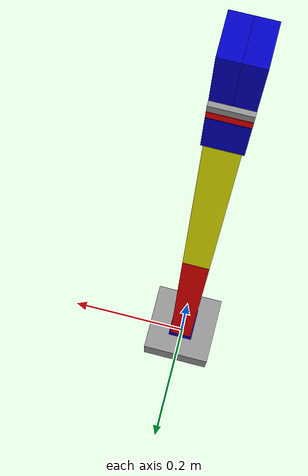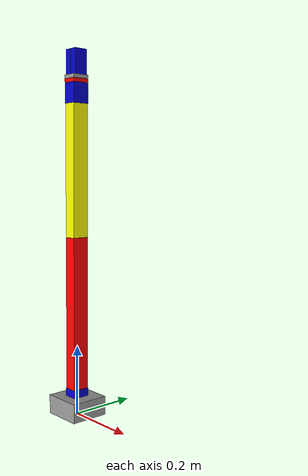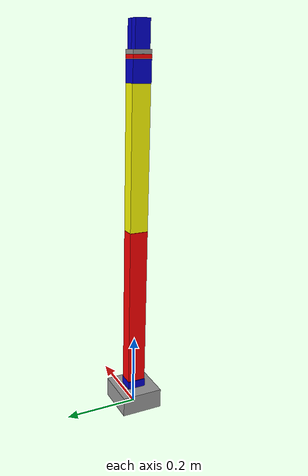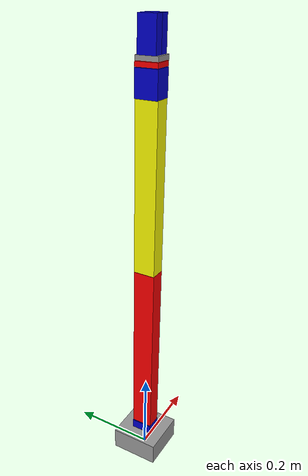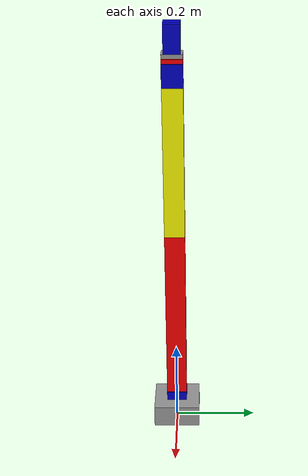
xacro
<?xml version="1.0" ?>
<robot name="robo_arm" xmlns:xacro="http://ros.org/wiki/xacro">

<gazebo reference="base_link">
  <material>Gazebo/Black</material>
</gazebo>

<gazebo reference="arm_link_0">
  <material>Gazebo/Orange</material>
</gazebo>

<gazebo reference="arm_link_1">
  <material>Gazebo/Blue</material>
</gazebo>

<gazebo reference="arm_link_2">
  <material>Gazebo/Orange</material>
</gazebo>

<gazebo reference="arm_link_3">
  <material>Gazebo/Blue</material>
</gazebo>

<gazebo reference="arm_link_4">
  <material>Gazebo/Orange</material>
</gazebo>

<gazebo reference="arm_link_5">
  <material>Gazebo/Blue</material>
</gazebo>

<gazebo reference="arm_link_6">
  <material>Gazebo/Orange</material>
</gazebo>

<gazebo reference="arm_link_7">
  <material>Gazebo/Blue</material>
</gazebo>

<gazebo reference="arm_link_8">
  <material>Gazebo/Orange</material>
</gazebo>

<!--Colors for the shapes-->
  <material name="omni/Blue">
    <color rgba="0 0 0.8 1"/>
  </material>
  <material name="omni/Red">
    <color rgba="1 0 0 1"/>
  </material>
  <material name="omni/Green">
    <color rgba="0 1 0 1"/>
  </material>
  <material name="omni/Yellow">
    <color rgba="1 1 0 1"/>
  </material>
  <material name="omni/LightGrey">
    <color rgba="0.6 0.6 0.6 1"/>
  </material>
  <material name="omni/DarkGrey">
    <color rgba="0.4 0.4 0.4 1"/>
  </material>
<!--Base link -->
  <link name="base_link">
    <inertial>
      <origin rpy="0 0 0" xyz="0 0 0"/>
      <mass value="10.0"/>
      <inertia ixx="0.1" ixy="0" ixz="0" iyy="0.1" iyz="0" izz="0.1"/>
    </inertial>
  </link>
  <!-- joint between base_link and arm_0_link -->
  <joint name="arm_joint_0" type="fixed">
    <origin rpy="0 0 0" xyz="0 0 0"/>
    <parent link="base_link"/>
    <child link="arm_link_0"/>
  </joint>
  <link name="arm_link_0">
    <visual>
      <origin rpy="0 0 0" xyz="0 0 0.02725"/>
      <geometry>
        <box size="0.1143 0.1143 0.0545"/>
      </geometry>
      <material name="omni/LightGrey"/>
    </visual>
    <collision>
      <origin rpy="0 0 0" xyz="0 0 0.02725"/>
      <geometry>
        <box size="0.1143 0.1143 0.0545"/>
      </geometry>
    </collision>
    <inertial>
      <!-- CENTER OF MASS -->
      <origin rpy="0 0 0" xyz="0 0 0.02725"/>
      <mass value="0.2"/>
      <!-- box inertia: 1/12*m(y^2+z^2), ... -->
      <inertia ixx="0.000267245666667" ixy="0" ixz="0" iyy="0.000267245666667" iyz="0" izz="0.000435483"/>
    </inertial>
  </link>
  <joint name="arm_joint_1" type="revolute">
    <parent link="arm_link_0"/>
    <child link="arm_link_1"/>
    <dynamics damping="3.0" friction="0.3"/>
    <limit effort="30.0" lower="-3.1415926535" upper="3.1415926535" velocity="5.0"/>
    <origin rpy="0 0 0" xyz="0 0 0.0545"/>
    <axis xyz="0 0 1"/>
  </joint>
  <link name="arm_link_1">
    <visual>
      <origin rpy="0 0 0" xyz="0 0 0.011"/>
      <geometry>
        <box size="0.0402 0.05 0.023"/>
      </geometry>
      <material name="omni/Blue"/>
    </visual>
    <collision>
      <origin rpy="0 0 0" xyz="0 0 0.011"/>
      <geometry>
        <box size="0.0402 0.05 0.023"/>
      </geometry>
    </collision>
    <inertial>
      <!-- CENTER OF MASS -->
      <origin rpy="0 0 0" xyz="0 0 0.0615"/>
      <mass value="0.190421352"/>
      <!-- box inertia: 1/12*m(y^2+z^2), ... -->
      <inertia ixx="0.000279744834534" ixy="0" ixz="0" iyy="0.000265717763008" iyz="0" izz="6.53151584738e-05"/>
    </inertial>
  </link>
  <joint name="arm_joint_2" type="revolute">
    <parent link="arm_link_1"/>
    <child link="arm_link_2"/>
    <dynamics damping="3.0" friction="0.3"/>
    <limit effort="30.0" lower="0" upper="1.57079632679" velocity="5.0"/>
    <origin rpy="0 0 0" xyz="0 0 0.02"/>
    <axis xyz="0 1 0"/>
  </joint>
  <link name="arm_link_2">
    <visual>
      <origin rpy="0 0 0" xyz="0 0 0.222"/>
      <geometry>
        <box size="0.0356 0.05 0.44"/>
      </geometry>
      <material name="omni/Red"/>
    </visual>
    <collision>
      <origin rpy="0 0 0" xyz="0 0 0.222"/>
      <geometry>
        <box size="0.0356 0.05 0.44"/>
      </geometry>
    </collision>
    <inertial>
      <!-- CENTER OF MASS -->
      <origin rpy="0 0 0" xyz="0 0 0.1585"/>
      <mass value="0.29302326"/>
      <!-- box inertia: 1/12*m(y^2+z^2), ... -->
      <inertia ixx="0.00251484771035" ixy="0" ixz="0" iyy="0.00248474836108" iyz="0" izz="9.19936757328e-05"/>
    </inertial>
  </link>
  <joint name="arm_joint_3" type="revolute">
    <parent link="arm_link_2"/>
    <child link="arm_link_3"/>
    <dynamics damping="3.0" friction="0.3"/>
    <limit effort="30.0" lower="0" upper="1.57079632679" velocity="5.0"/>
    <origin rpy="0 0 0" xyz="0 0 0.5"/>
    <axis xyz="0 1 0"/>
  </joint>
  <link name="arm_link_3">
    <visual>
      <origin rpy="0 0 0" xyz="0 0 0.13"/>
      <geometry>
        <box size="0.0356 0.05 0.375"/>
      </geometry>
      <material name="omni/Yellow"/>
    </visual>
    <collision>
      <origin rpy="0 0 0" xyz="0 0 0.13"/>
      <geometry>
        <box size="0.0356 0.05 0.375"/>
      </geometry>
    </collision>
    <inertial>
      <!-- CENTER OF MASS -->
      <origin rpy="0 0 0" xyz="0 0 0.101"/>
      <mass value="0.21931466"/>
      <!-- box inertia: 1/12*m(y^2+z^2), ... -->
      <inertia ixx="0.000791433503053" ixy="0" ixz="0" iyy="0.000768905501178" iyz="0" izz="6.88531064581e-05"/>
    </inertial>
  </link>
  <joint name="arm_joint_4" type="revolute">
    <parent link="arm_link_3"/>
    <child link="arm_link_4"/>
    <dynamics damping="3.0" friction="0.3"/>
    <limit effort="30.0" lower="-1.5707963268" upper="1.5707963268" velocity="5.0"/>
    <origin rpy="0 0 0" xyz="0 0 0.317"/>
    <axis xyz="0 1 0"/>
  </joint>
  <link name="arm_link_4">
    <visual>
      <origin rpy="0 0 0" xyz="0 0 0.028"/>
      <geometry>
        <box size="0.0402 0.05 0.056"/>
      </geometry>
      <material name="omni/Blue"/>
    </visual>
    <collision>
      <origin rpy="0 0 0" xyz="0 0 0"/>
      <geometry>
        <box size="0.0402 0.05 0.056"/>
      </geometry>
    </collision>
    <inertial>
      <!-- CENTER OF MASS -->
      <origin rpy="0 0 0" xyz="0 0 0.0615"/>
      <mass value="0.190421352"/>
      <!-- box inertia: 1/12*m(y^2+z^2), ... -->
      <inertia ixx="0.000279744834534" ixy="0" ixz="0" iyy="0.000265717763008" iyz="0" izz="6.53151584738e-05"/>
    </inertial>
  </link>
  <joint name="arm_joint_5" type="revolute">
    <parent link="arm_link_4"/>
    <child link="arm_link_5"/>
    <dynamics damping="3.0" friction="0.3"/>
    <limit effort="30.0" lower="-3.1415926535" upper="3.1415926535" velocity="5.0"/>
    <origin rpy="0 0 0" xyz="0 0 0.05"/>
    <axis xyz="0 0 1"/>
  </joint>
  <link name="arm_link_5">
    <visual>
      <origin rpy="0 0 0" xyz="0 0 0.012"/>
      <geometry>
        <box size="0.0402 0.05 0.010"/>
      </geometry>
      <material name="omni/Red"/>
    </visual>
    <collision>
      <origin rpy="0 0 0" xyz="0 0 0"/>
      <geometry>
        <box size="0.0402 0.05 0.010"/>
      </geometry>
    </collision>
    <inertial>
      <!-- CENTER OF MASS -->
      <origin rpy="0 0 0" xyz="0 0 0.0615"/>
      <mass value="0.190421352"/>
      <!-- box inertia: 1/12*m(y^2+z^2), ... -->
      <inertia ixx="0.000279744834534" ixy="0" ixz="0" iyy="0.000265717763008" iyz="0" izz="6.53151584738e-05"/>
    </inertial>
  </link>
  <joint name="arm_joint_6" type="fixed">
    <origin rpy="0 0 0" xyz="0 0 0"/>
    <parent link="arm_link_5"/>
    <child link="arm_link_6"/>
  </joint>
  <link name="arm_link_6">
    <visual>
      <origin rpy="0 0 0" xyz="0 0 0.023"/>
      <geometry>
        <box size="0.0402 0.05 0.010"/>
      </geometry>
      <material name="omni/LightGrey"/>
    </visual>
    <collision>
      <origin rpy="0 0 0" xyz="0 0 0.02725"/>
      <geometry>
        <box size="0.0402 0.05 0.010"/>
      </geometry>
    </collision>
    <inertial>
      <!-- CENTER OF MASS -->
      <origin rpy="0 0 0" xyz="0 0 0.02725"/>
      <mass value="0.2"/>
      <!-- box inertia: 1/12*m(y^2+z^2), ... -->
      <inertia ixx="0.000267245666667" ixy="0" ixz="0" iyy="0.000267245666667" iyz="0" izz="0.000435483"/>
    </inertial>
  </link>
  <joint name="arm_joint_7" type="revolute">
    <parent link="arm_link_6"/>
    <child link="arm_link_7"/>
    <dynamics damping="3.0" friction="0.3"/>
    <limit effort="30.0" lower="0" upper="1.0471975512" velocity="5.0"/>
    <origin rpy="0 0 0" xyz="0.01 0 0.0275"/>
    <axis xyz="0 1 0"/>
  </joint>
  <link name="arm_link_7">
    <visual>
      <origin rpy="0 0 0" xyz="0 0 0.035"/>
      <geometry>
        <box size="0.0201 0.04 0.07"/>
      </geometry>
      <material name="omni/Blue"/>
    </visual>
    <collision>
      <origin rpy="0 0 0" xyz="0 0 0"/>
      <geometry>
        <box size="0.0402 0.05 0.010"/>
      </geometry>
    </collision>
    <inertial>
      <!-- CENTER OF MASS -->
      <origin rpy="0 0 0" xyz="0 0 0.0615"/>
      <mass value="0.190421352"/>
      <!-- box inertia: 1/12*m(y^2+z^2), ... -->
      <inertia ixx="0.000279744834534" ixy="0" ixz="0" iyy="0.000265717763008" iyz="0" izz="6.53151584738e-05"/>
    </inertial>
  </link>
  <joint name="arm_joint_8" type="revolute">
    <parent link="arm_link_6"/>
    <child link="arm_link_8"/>
    <dynamics damping="3.0" friction="0.3"/>
    <limit effort="30.0" lower="0" upper="1.0471975512" velocity="5.0"/>
    <origin rpy="0 0 0" xyz="-0.01 0 0.0275"/>
    <axis xyz="0 -1 0"/>
  </joint>
  <link name="arm_link_8">
    <visual>
      <origin rpy="0 0 0" xyz="0 0 0.035"/>
      <geometry>
        <box size="0.0201 0.04 0.07"/>
      </geometry>
      <material name="omni/Blue"/>
    </visual>
    <collision>
      <origin rpy="0 0 0" xyz="0 0 0"/>
      <geometry>
        <box size="0.0402 0.05 0.010"/>
      </geometry>
    </collision>
    <inertial>
      <!-- CENTER OF MASS -->
      <origin rpy="0 0 0" xyz="0 0 0.0615"/>
      <mass value="0.190421352"/>
      <!-- box inertia: 1/12*m(y^2+z^2), ... -->
      <inertia ixx="0.000279744834534" ixy="0" ixz="0" iyy="0.000265717763008" iyz="0" izz="6.53151584738e-05"/>
    </inertial>
  </link>
</robot>
